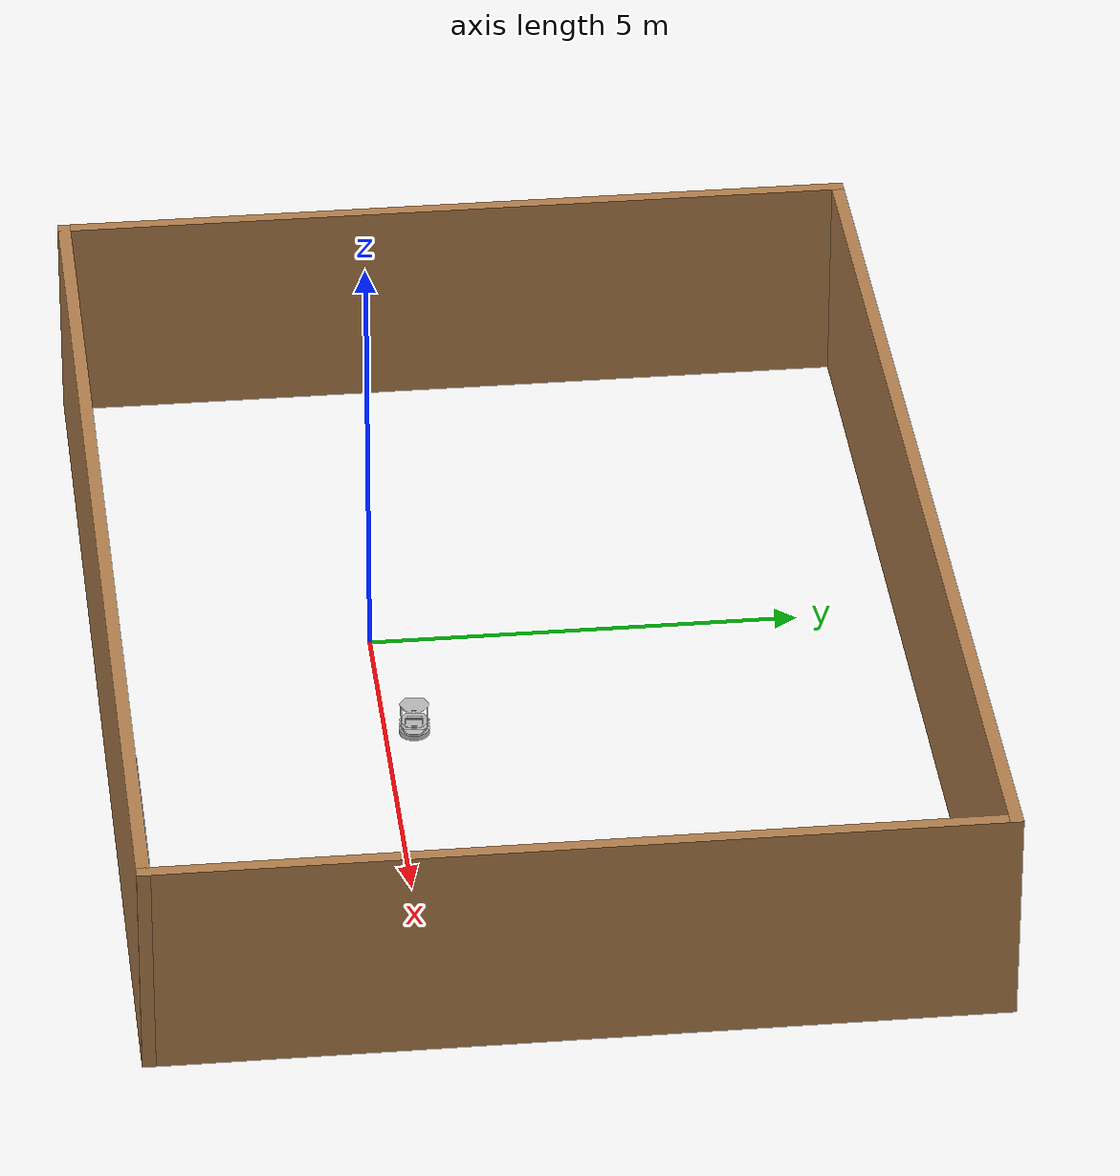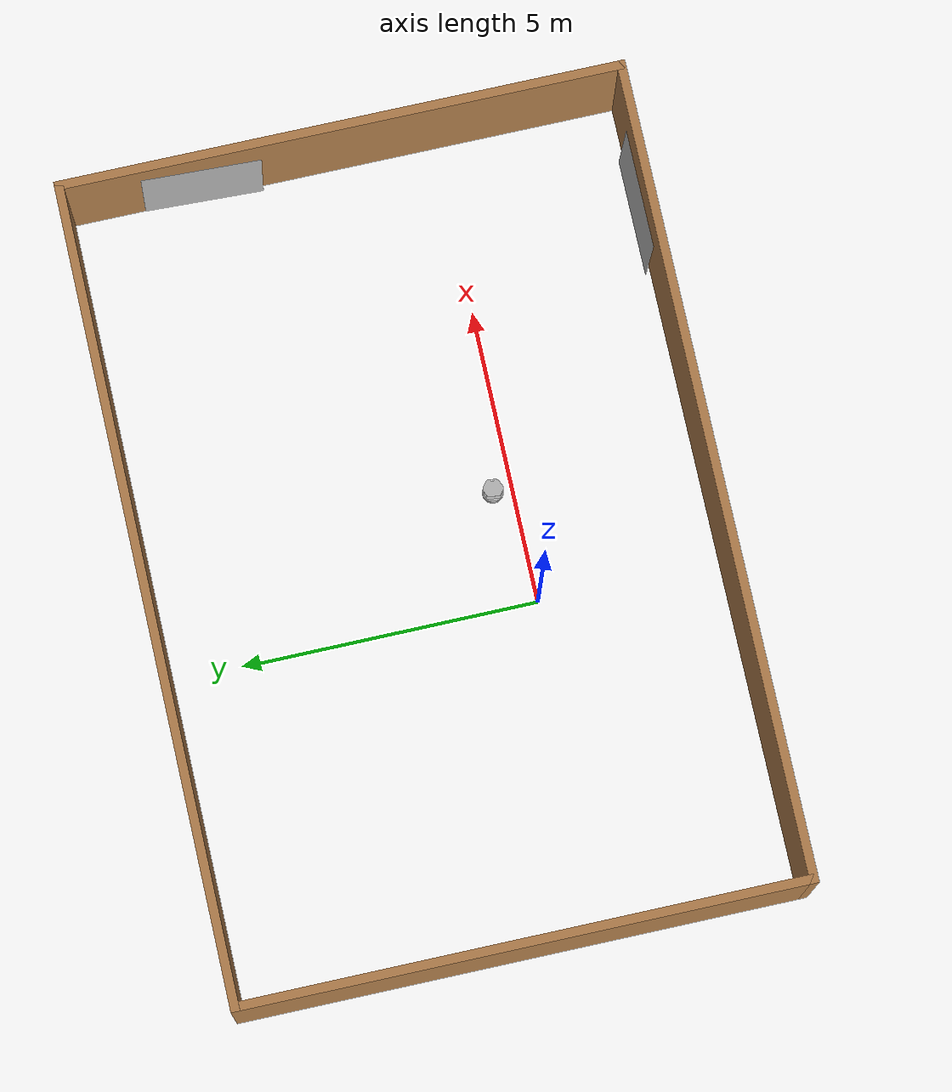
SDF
<sdf version="1.6">
 <world name="default">
  <model name="mobile_base">
   <link name="base_footprint">
    <inertial>
     <pose>-0.002635 -4.1e-05 0.129243 0 -0 0</pose>
     <mass>4.6973</mass>
     <inertia>
      <ixx>0.1365</ixx>
      <ixy>-2.51802e-05</ixy>
      <ixz>0.0108194</ixz>
      <iyy>0.132157</iyy>
      <iyz>4.89572e-05</iyz>
      <izz>0.0741648</izz>
     </inertia>
    </inertial>
    <collision name="base_footprint_fixed_joint_lump__base_collision">
     <pose>0 0 0.06969 0 -0 0</pose>
     <geometry><cylinder><length>0.10938</length><radius>0.178</radius></cylinder></geometry>
    </collision>
    <collision name="base_footprint_fixed_joint_lump__camera_link_collision_1">
     <pose>-0.087 -0.0015 0.2972 0 -0 0</pose>
     <geometry><box><size>0.073 0.276 0.072</size></box></geometry>
    </collision>
    <collision name="base_footprint_fixed_joint_lump__caster_back_link_collision_2">
     <pose>-0.135 0 0.0192 -1.5708 0 0</pose>
     <geometry><cylinder><length>0.0176</length><radius>0.017</radius></cylinder></geometry>
     <surface>
      <contact><ode><kp>1e+06</kp><kd>100</kd><max_vel>1</max_vel><min_depth>0.001</min_depth></ode></contact>
      <friction><ode><mu>0</mu><mu2>0</mu2></ode></friction>
     </surface>
    </collision>
    <collision name="base_footprint_fixed_joint_lump__caster_front_link_collision_3">
     <pose>0.115 0 0.0172 -1.5708 0 0</pose>
     <geometry><cylinder><length>0.0176</length><radius>0.017</radius></cylinder></geometry>
     <surface>
      <contact><ode><kp>1e+06</kp><kd>100</kd><max_vel>1</max_vel><min_depth>0.001</min_depth></ode></contact>
      <friction><ode><mu>0</mu><mu2>0</mu2></ode></friction>
     </surface>
    </collision>
    <collision name="base_footprint_fixed_joint_lump__mount_asus_xtion_pro_link_collision_4">
     <pose>-0.1024 0 0.2822 0 -0 0</pose>
     <geometry><box><size>0.033 0.276 0.012</size></box></geometry>
    </collision>
    <collision name="base_footprint_fixed_joint_lump__plate_bottom_link_collision_5">
     <pose>0 0 0.1408 0 -0 0</pose>
     <geometry><cylinder><length>0.006</length><radius>0.17</radius></cylinder></geometry>
    </collision>
    <collision name="base_footprint_fixed_joint_lump__plate_middle_link_collision_6">
     <pose>0 0 0.1976 0 -0 0</pose>
     <geometry><cylinder><length>0.006</length><radius>0.17</radius></cylinder></geometry>
    </collision>
    <collision name="base_footprint_fixed_joint_lump__plate_top_link_collision_7">
     <pose>0 0 0.4068 0 -0 0</pose>
     <geometry><cylinder><length>0.006</length><radius>0.17</radius></cylinder></geometry>
    </collision>
    <collision name="base_footprint_fixed_joint_lump__pole_bottom_0_link_collision_8">
     <pose>0.12 0.082 0.113 0 -0 0</pose>
     <geometry><cylinder><length>0.0492</length><radius>0.006</radius></cylinder></geometry>
    </collision>
    <collision name="base_footprint_fixed_joint_lump__pole_bottom_1_link_collision_9">
     <pose>0.055 0.12 0.113 0 -0 0</pose>
     <geometry><cylinder><length>0.0492</length><radius>0.006</radius></cylinder></geometry>
    </collision>
    <collision name="base_footprint_fixed_joint_lump__pole_bottom_2_link_collision_10">
     <pose>-0.055 0.12 0.113 0 -0 0</pose>
     <geometry><cylinder><length>0.0492</length><radius>0.006</radius></cylinder></geometry>
    </collision>
    <collision name="base_footprint_fixed_joint_lump__pole_bottom_3_link_collision_11">
     <pose>0.12 -0.082 0.113 0 -0 0</pose>
     <geometry><cylinder><length>0.0492</length><radius>0.006</radius></cylinder></geometry>
    </collision>
    <collision name="base_footprint_fixed_joint_lump__pole_bottom_4_link_collision_12">
     <pose>0.055 -0.12 0.113 0 -0 0</pose>
     <geometry><cylinder><length>0.0492</length><radius>0.006</radius></cylinder></geometry>
    </collision>
    <collision name="base_footprint_fixed_joint_lump__pole_bottom_5_link_collision_13">
     <pose>-0.055 -0.12 0.113 0 -0 0</pose>
     <geometry><cylinder><length>0.0492</length><radius>0.006</radius></cylinder></geometry>
    </collision>
    <collision name="base_footprint_fixed_joint_lump__pole_kinect_0_link_collision_14">
     <pose>-0.1024 0.098 0.2474 0 -0 0</pose>
     <geometry><cylinder><length>0.0936</length><radius>0.006</radius></cylinder></geometry>
    </collision>
    <collision name="base_footprint_fixed_joint_lump__pole_kinect_1_link_collision_15">
     <pose>-0.1024 -0.098 0.2474 0 -0 0</pose>
     <geometry><cylinder><length>0.0936</length><radius>0.006</radius></cylinder></geometry>
    </collision>
    <collision name="base_footprint_fixed_joint_lump__pole_middle_0_link_collision_16">
     <pose>0.0381 0.1505 0.1742 0 -0 0</pose>
     <geometry><cylinder><length>0.0608</length><radius>0.006</radius></cylinder></geometry>
    </collision>
    <collision name="base_footprint_fixed_joint_lump__pole_middle_1_link_collision_17">
     <pose>0.0381 -0.1505 0.1742 0 -0 0</pose>
     <geometry><cylinder><length>0.0608</length><radius>0.006</radius></cylinder></geometry>
    </collision>
    <collision name="base_footprint_fixed_joint_lump__pole_middle_2_link_collision_18">
     <pose>-0.0381 0.1505 0.1742 0 -0 0</pose>
     <geometry><cylinder><length>0.0608</length><radius>0.006</radius></cylinder></geometry>
    </collision>
    <collision name="base_footprint_fixed_joint_lump__pole_middle_3_link_collision_19">
     <pose>-0.0381 -0.1505 0.1742 0 -0 0</pose>
     <geometry><cylinder><length>0.0608</length><radius>0.006</radius></cylinder></geometry>
    </collision>
    <collision name="base_footprint_fixed_joint_lump__pole_top_0_link_collision_20">
     <pose>0.0381 0.1505 0.3022 0 -0 0</pose>
     <geometry><cylinder><length>0.2032</length><radius>0.006</radius></cylinder></geometry>
    </collision>
    <collision name="base_footprint_fixed_joint_lump__pole_top_1_link_collision_21">
     <pose>0.0381 -0.1505 0.3022 0 -0 0</pose>
     <geometry><cylinder><length>0.2032</length><radius>0.006</radius></cylinder></geometry>
    </collision>
    <collision name="base_footprint_fixed_joint_lump__pole_top_2_link_collision_22">
     <pose>-0.0381 0.1505 0.3022 0 -0 0</pose>
     <geometry><cylinder><length>0.2032</length><radius>0.006</radius></cylinder></geometry>
    </collision>
    <collision name="base_footprint_fixed_joint_lump__pole_top_3_link_collision_23">
     <pose>-0.0381 -0.1505 0.3022 0 -0 0</pose>
     <geometry><cylinder><length>0.2032</length><radius>0.006</radius></cylinder></geometry>
    </collision>
    <visual name="base_footprint_fixed_joint_lump__base_link_visual">
     <pose>0.001 0 0.06219 0 -0 0</pose>
     <geometry>
      <mesh><scale>1 1 1</scale><uri>/opt/ros/kinetic/share/kobuki_description/meshes/main_body.dae</uri></mesh>
     </geometry>
     <material><script><uri>__default__</uri><name>__default__</name></script></material>
    </visual>
    <visual name="base_footprint_fixed_joint_lump__camera_link_visual_1">
     <pose>-0.102 0.002 0.3012 0 -0 0</pose>
     <geometry>
      <mesh>
       <scale>1 1 1</scale>
       <uri>/opt/ros/kinetic/share/turtlebot_description/meshes/sensors/xtion_pro_camera.dae</uri>
      </mesh>
     </geometry>
     <material><script><uri>__default__</uri><name>__default__</name></script></material>
    </visual>
    <visual name="base_footprint_fixed_joint_lump__mount_asus_xtion_pro_link_visual_2">
     <pose>-0.1024 0 0.2822 -1.5708 0 0</pose>
     <geometry>
      <mesh>
       <scale>1 1 1</scale>
       <uri>/opt/ros/kinetic/share/turtlebot_description/meshes/sensors/xtion_pro_stack.dae</uri>
      </mesh>
     </geometry>
    </visual>
    <visual name="base_footprint_fixed_joint_lump__plate_bottom_link_visual_3">
     <pose>0.02364 0 0.1408 0 -0 0</pose>
     <geometry>
      <mesh>
       <scale>1 1 1</scale>
       <uri>/opt/ros/kinetic/share/turtlebot_description/meshes/stacks/hexagons/plate_bottom.dae</uri>
      </mesh>
     </geometry>
    </visual>
    <visual name="base_footprint_fixed_joint_lump__plate_middle_link_visual_4">
     <pose>-0.01364 0 0.1976 0 -0 0</pose>
     <geometry>
      <mesh>
       <scale>1 1 1</scale>
       <uri>/opt/ros/kinetic/share/turtlebot_description/meshes/stacks/hexagons/plate_middle.dae</uri>
      </mesh>
     </geometry>
    </visual>
    <visual name="base_footprint_fixed_joint_lump__plate_top_link_visual_5">
     <pose>-0.01364 0 0.4068 0 -0 0</pose>
     <geometry>
      <mesh>
       <scale>1 1 1</scale>
       <uri>/opt/ros/kinetic/share/turtlebot_description/meshes/stacks/hexagons/plate_top.dae</uri>
      </mesh>
     </geometry>
    </visual>
    <visual name="base_footprint_fixed_joint_lump__pole_bottom_0_link_visual_6">
     <pose>0.12 0.082 0.113 0 -0 0</pose>
     <geometry>
      <mesh>
       <scale>1 1 1</scale>
       <uri>/opt/ros/kinetic/share/turtlebot_description/meshes/stacks/hexagons/pole_bottom.dae</uri>
      </mesh>
     </geometry>
    </visual>
    <visual name="base_footprint_fixed_joint_lump__pole_bottom_1_link_visual_7">
     <pose>0.055 0.12 0.113 0 -0 0</pose>
     <geometry>
      <mesh>
       <scale>1 1 1</scale>
       <uri>/opt/ros/kinetic/share/turtlebot_description/meshes/stacks/hexagons/pole_bottom.dae</uri>
      </mesh>
     </geometry>
    </visual>
    <visual name="base_footprint_fixed_joint_lump__pole_bottom_2_link_visual_8">
     <pose>-0.055 0.12 0.113 0 -0 0</pose>
     <geometry>
      <mesh>
       <scale>1 1 1</scale>
       <uri>/opt/ros/kinetic/share/turtlebot_description/meshes/stacks/hexagons/pole_bottom.dae</uri>
      </mesh>
     </geometry>
    </visual>
    <visual name="base_footprint_fixed_joint_lump__pole_bottom_3_link_visual_9">
     <pose>0.12 -0.082 0.113 0 -0 0</pose>
     <geometry>
      <mesh>
       <scale>1 1 1</scale>
       <uri>/opt/ros/kinetic/share/turtlebot_description/meshes/stacks/hexagons/pole_bottom.dae</uri>
      </mesh>
     </geometry>
    </visual>
    <visual name="base_footprint_fixed_joint_lump__pole_bottom_4_link_visual_10">
     <pose>0.055 -0.12 0.113 0 -0 0</pose>
     <geometry>
      <mesh>
       <scale>1 1 1</scale>
       <uri>/opt/ros/kinetic/share/turtlebot_description/meshes/stacks/hexagons/pole_bottom.dae</uri>
      </mesh>
     </geometry>
    </visual>
    <visual name="base_footprint_fixed_joint_lump__pole_bottom_5_link_visual_11">
     <pose>-0.055 -0.12 0.113 0 -0 0</pose>
     <geometry>
      <mesh>
       <scale>1 1 1</scale>
       <uri>/opt/ros/kinetic/share/turtlebot_description/meshes/stacks/hexagons/pole_bottom.dae</uri>
      </mesh>
     </geometry>
    </visual>
    <visual name="base_footprint_fixed_joint_lump__pole_kinect_0_link_visual_12">
     <pose>-0.1024 0.098 0.2374 0 -0 0</pose>
     <geometry>
      <mesh>
       <scale>1 1 1</scale>
       <uri>/opt/ros/kinetic/share/turtlebot_description/meshes/sensors/sensor_pole.dae</uri>
      </mesh>
     </geometry>
    </visual>
    <visual name="base_footprint_fixed_joint_lump__pole_kinect_1_link_visual_13">
     <pose>-0.1024 -0.098 0.2374 0 -0 0</pose>
     <geometry>
      <mesh>
       <scale>1 1 1</scale>
       <uri>/opt/ros/kinetic/share/turtlebot_description/meshes/sensors/sensor_pole.dae</uri>
      </mesh>
     </geometry>
    </visual>
    <visual name="base_footprint_fixed_joint_lump__pole_middle_0_link_visual_14">
     <pose>0.0381 0.1505 0.1742 3.14159 -0 3.14159</pose>
     <geometry>
      <mesh>
       <scale>1 1 1</scale>
       <uri>/opt/ros/kinetic/share/turtlebot_description/meshes/stacks/hexagons/pole_middle.dae</uri>
      </mesh>
     </geometry>
    </visual>
    <visual name="base_footprint_fixed_joint_lump__pole_middle_1_link_visual_15">
     <pose>0.0381 -0.1505 0.1742 3.14159 -0 3.14159</pose>
     <geometry>
      <mesh>
       <scale>1 1 1</scale>
       <uri>/opt/ros/kinetic/share/turtlebot_description/meshes/stacks/hexagons/pole_middle.dae</uri>
      </mesh>
     </geometry>
    </visual>
    <visual name="base_footprint_fixed_joint_lump__pole_middle_2_link_visual_16">
     <pose>-0.0381 0.1505 0.1742 3.14159 -0 3.14159</pose>
     <geometry>
      <mesh>
       <scale>1 1 1</scale>
       <uri>/opt/ros/kinetic/share/turtlebot_description/meshes/stacks/hexagons/pole_middle.dae</uri>
      </mesh>
     </geometry>
    </visual>
    <visual name="base_footprint_fixed_joint_lump__pole_middle_3_link_visual_17">
     <pose>-0.0381 -0.1505 0.1742 3.14159 -0 3.14159</pose>
     <geometry>
      <mesh>
       <scale>1 1 1</scale>
       <uri>/opt/ros/kinetic/share/turtlebot_description/meshes/stacks/hexagons/pole_middle.dae</uri>
      </mesh>
     </geometry>
    </visual>
    <visual name="base_footprint_fixed_joint_lump__pole_top_0_link_visual_18">
     <pose>0.0381 0.1505 0.3022 0 -0 0</pose>
     <geometry>
      <mesh>
       <scale>1 1 1</scale>
       <uri>/opt/ros/kinetic/share/turtlebot_description/meshes/stacks/hexagons/pole_top.dae</uri>
      </mesh>
     </geometry>
    </visual>
    <visual name="base_footprint_fixed_joint_lump__pole_top_1_link_visual_19">
     <pose>0.0381 -0.1505 0.3022 0 -0 0</pose>
     <geometry>
      <mesh>
       <scale>1 1 1</scale>
       <uri>/opt/ros/kinetic/share/turtlebot_description/meshes/stacks/hexagons/pole_top.dae</uri>
      </mesh>
     </geometry>
    </visual>
    <visual name="base_footprint_fixed_joint_lump__pole_top_2_link_visual_20">
     <pose>-0.0381 0.1505 0.3022 0 -0 0</pose>
     <geometry>
      <mesh>
       <scale>1 1 1</scale>
       <uri>/opt/ros/kinetic/share/turtlebot_description/meshes/stacks/hexagons/pole_top.dae</uri>
      </mesh>
     </geometry>
    </visual>
    <visual name="base_footprint_fixed_joint_lump__pole_top_3_link_visual_21">
     <pose>-0.0381 -0.1505 0.3022 0 -0 0</pose>
     <geometry>
      <mesh>
       <scale>1 1 1</scale>
       <uri>/opt/ros/kinetic/share/turtlebot_description/meshes/stacks/hexagons/pole_top.dae</uri>
      </mesh>
     </geometry>
    </visual>
    <sensor name="bumpers" type="contact">
     <always_on>1</always_on>
     <update_rate>50</update_rate>
     <visualize>1</visualize>
     <contact>
      <collision>base_footprint_fixed_joint_lump__base_collision</collision>
      <topic>__default_topic__</topic>
     </contact>
     <pose>0 0 0.0102 0 -0 0</pose>
    </sensor>
    <sensor name="camera" type="depth">
     <always_on>1</always_on>
     <update_rate>20</update_rate>
     <camera name="__default__">
      <horizontal_fov>1.0472</horizontal_fov>
      <image><format>B8G8R8</format><width>640</width><height>480</height></image>
      <clip><near>0.05</near><far>8</far></clip>
     </camera>
     <plugin name="kinect_camera_controller" filename="libgazebo_ros_openni_kinect.so">
      <cameraName>camera</cameraName>
      <alwaysOn>true</alwaysOn>
      <updateRate>10</updateRate>
      <imageTopicName>rgb/image_raw</imageTopicName>
      <depthImageTopicName>depth/image_raw</depthImageTopicName>
      <pointCloudTopicName>depth/points</pointCloudTopicName>
      <cameraInfoTopicName>rgb/camera_info</cameraInfoTopicName>
      <depthImageCameraInfoTopicName>depth/camera_info</depthImageCameraInfoTopicName>
      <frameName>camera_depth_optical_frame</frameName>
      <baseline>0.1</baseline>
      <distortion_k1>0.0</distortion_k1>
      <distortion_k2>0.0</distortion_k2>
      <distortion_k3>0.0</distortion_k3>
      <distortion_t1>0.0</distortion_t1>
      <distortion_t2>0.0</distortion_t2>
      <pointCloudCutoff>0.4</pointCloudCutoff>
      <robotNamespace>/</robotNamespace>
     </plugin>
     <pose>-0.087 -0.0015 0.2972 0 -0 0</pose>
    </sensor>
    <sensor name="cliff_sensor_front" type="ray">
     <always_on>1</always_on>
     <update_rate>50</update_rate>
     <visualize>1</visualize>
     <ray>
      <scan>
       <horizontal>
        <samples>50</samples>
        <resolution>1</resolution>
        <min_angle>-0.0436</min_angle>
        <max_angle>0.0436</max_angle>
       </horizontal>
       <vertical><samples>1</samples><min_angle>0</min_angle><max_angle>0</max_angle></vertical>
      </scan>
      <range><min>0.01</min><max>0.15</max><resolution>1</resolution></range>
     </ray>
     <pose>0.156 0 0.0316 3.14159 1.57079 3.14159</pose>
    </sensor>
    <sensor name="cliff_sensor_left" type="ray">
     <always_on>1</always_on>
     <update_rate>50</update_rate>
     <visualize>1</visualize>
     <ray>
      <scan>
       <horizontal>
        <samples>50</samples>
        <resolution>1</resolution>
        <min_angle>-0.0436</min_angle>
        <max_angle>0.0436</max_angle>
       </horizontal>
       <vertical><samples>1</samples><min_angle>0</min_angle><max_angle>0</max_angle></vertical>
      </scan>
      <range><min>0.01</min><max>0.15</max><resolution>1</resolution></range>
     </ray>
     <pose>0.08734 0.13601 0.0316 3.14159 1.57079 3.14159</pose>
    </sensor>
    <sensor name="cliff_sensor_right" type="ray">
     <always_on>1</always_on>
     <update_rate>50</update_rate>
     <visualize>1</visualize>
     <ray>
      <scan>
       <horizontal>
        <samples>50</samples>
        <resolution>1</resolution>
        <min_angle>-0.0436</min_angle>
        <max_angle>0.0436</max_angle>
       </horizontal>
       <vertical><samples>1</samples><min_angle>0</min_angle><max_angle>0</max_angle></vertical>
      </scan>
      <range><min>0.01</min><max>0.15</max><resolution>1</resolution></range>
     </ray>
     <pose>0.085 -0.13601 0.0316 3.14159 1.57079 3.14159</pose>
    </sensor>
    <sensor name="imu" type="imu">
     <always_on>1</always_on>
     <update_rate>50</update_rate>
     <visualize>0</visualize>
     <imu>
      <angular_velocity>
       <x>
        <noise type="gaussian">
         <mean>0</mean>
         <stddev>1.96e-06</stddev>
         <bias_mean>0</bias_mean>
         <bias_stddev>0</bias_stddev>
        </noise>
       </x>
       <y>
        <noise type="gaussian">
         <mean>0</mean>
         <stddev>1.96e-06</stddev>
         <bias_mean>0</bias_mean>
         <bias_stddev>0</bias_stddev>
        </noise>
       </y>
       <z>
        <noise type="gaussian">
         <mean>0</mean>
         <stddev>1.96e-06</stddev>
         <bias_mean>0</bias_mean>
         <bias_stddev>0</bias_stddev>
        </noise>
       </z>
      </angular_velocity>
      <linear_acceleration>
       <x>
        <noise type="gaussian">
         <mean>0</mean>
         <stddev>0.017</stddev>
         <bias_mean>0.1</bias_mean>
         <bias_stddev>0.001</bias_stddev>
        </noise>
       </x>
       <y>
        <noise type="gaussian">
         <mean>0</mean>
         <stddev>0.017</stddev>
         <bias_mean>0.1</bias_mean>
         <bias_stddev>0.001</bias_stddev>
        </noise>
       </y>
       <z>
        <noise type="gaussian">
         <mean>0</mean>
         <stddev>0.017</stddev>
         <bias_mean>0.1</bias_mean>
         <bias_stddev>0.001</bias_stddev>
        </noise>
       </z>
      </linear_acceleration>
     </imu>
     <pose>0.056 0.062 0.0304 0 -0 0</pose>
    </sensor>
   </link>
   <link name="wheel_left_link">
    <pose>0 0.115 0.0352 -1.5708 0 0</pose>
    <inertial>
     <mass>0.01</mass>
     <inertia><ixx>0.001</ixx><ixy>0</ixy><ixz>0</ixz><iyy>0.001</iyy><iyz>0</iyz><izz>0.001</izz></inertia>
    </inertial>
    <collision name="wheel_left_link_collision">
     <geometry><cylinder><length>0.0206</length><radius>0.0352</radius></cylinder></geometry>
     <surface>
      <contact><ode><kp>1e+06</kp><kd>100</kd><max_vel>1</max_vel><min_depth>0.001</min_depth></ode></contact>
      <friction><ode><mu>1</mu><mu2>1</mu2></ode></friction>
     </surface>
    </collision>
    <visual name="wheel_left_link_visual">
     <geometry>
      <mesh><scale>1 1 1</scale><uri>/opt/ros/kinetic/share/kobuki_description/meshes/wheel.dae</uri></mesh>
     </geometry>
     <material><script><uri>__default__</uri><name>__default__</name></script></material>
    </visual>
   </link>
   <joint name="wheel_left_joint" type="revolute">
    <child>wheel_left_link</child>
    <parent>base_footprint</parent>
    <axis>
     <xyz>0 1 0</xyz>
     <limit><lower>-1e+16</lower><upper>1e+16</upper></limit>
     <dynamics><spring_reference>0</spring_reference><spring_stiffness>0</spring_stiffness></dynamics>
     <use_parent_model_frame>1</use_parent_model_frame>
    </axis>
   </joint>
   <link name="wheel_right_link">
    <pose>0 -0.115 0.0352 -1.5708 0 0</pose>
    <inertial>
     <mass>0.01</mass>
     <inertia><ixx>0.001</ixx><ixy>0</ixy><ixz>0</ixz><iyy>0.001</iyy><iyz>0</iyz><izz>0.001</izz></inertia>
    </inertial>
    <collision name="wheel_right_link_collision">
     <geometry><cylinder><length>0.0206</length><radius>0.035</radius></cylinder></geometry>
     <surface>
      <contact><ode><kp>1e+06</kp><kd>100</kd><max_vel>1</max_vel><min_depth>0.001</min_depth></ode></contact>
      <friction><ode><mu>1</mu><mu2>1</mu2></ode></friction>
     </surface>
    </collision>
    <visual name="wheel_right_link_visual">
     <geometry>
      <mesh><scale>1 1 1</scale><uri>/opt/ros/kinetic/share/kobuki_description/meshes/wheel.dae</uri></mesh>
     </geometry>
     <material><script><uri>__default__</uri><name>__default__</name></script></material>
    </visual>
   </link>
   <joint name="wheel_right_joint" type="revolute">
    <child>wheel_right_link</child>
    <parent>base_footprint</parent>
    <axis>
     <xyz>0 1 0</xyz>
     <limit><lower>-1e+16</lower><upper>1e+16</upper></limit>
     <dynamics><spring_reference>0</spring_reference><spring_stiffness>0</spring_stiffness></dynamics>
     <use_parent_model_frame>1</use_parent_model_frame>
    </axis>
   </joint>
   <static>0</static>
   <plugin name="kobuki_controller" filename="libgazebo_ros_kobuki.so">
    <publish_tf>1</publish_tf>
    <left_wheel_joint_name>wheel_left_joint</left_wheel_joint_name>
    <right_wheel_joint_name>wheel_right_joint</right_wheel_joint_name>
    <wheel_separation>.230</wheel_separation>
    <wheel_diameter>0.070</wheel_diameter>
    <torque>1.0</torque>
    <velocity_command_timeout>0.6</velocity_command_timeout>
    <cliff_sensor_left_name>cliff_sensor_left</cliff_sensor_left_name>
    <cliff_sensor_center_name>cliff_sensor_front</cliff_sensor_center_name>
    <cliff_sensor_right_name>cliff_sensor_right</cliff_sensor_right_name>
    <cliff_detection_threshold>0.04</cliff_detection_threshold>
    <bumper_name>bumpers</bumper_name>
    <imu_name>imu</imu_name>
    <robotNamespace>/</robotNamespace>
   </plugin>
   <pose>1.94594 0.331478 -0.001131 2.7e-05 -0.007997 3.03152</pose>
  </model>
  <model name="WoodVolta">
   <pose>1.16884 1.54534 0 0 -0 0</pose>
   <link name="Wall_11">
    <collision name="Wall_11_Collision">
     <geometry><box><size>9.5 0.15 2.5</size></box></geometry>
     <pose>0 0 1.25 0 -0 0</pose>
    </collision>
    <visual name="Wall_11_Visual">
     <pose>0 0 1.25 0 -0 0</pose>
     <geometry><box><size>9.5 0.15 2.5</size></box></geometry>
     <material>
      <script><uri>file://media/materials/scripts/gazebo.material</uri><name>Gazebo/Wood</name></script>
      <ambient>1 1 1 1</ambient>
     </material>
    </visual>
    <pose>-6.8 0 0 0 -0 1.5708</pose>
   </link>
   <link name="Wall_12">
    <collision name="Wall_12_Collision">
     <geometry><box><size>13.75 0.15 2.5</size></box></geometry>
     <pose>0 0 1.25 0 -0 0</pose>
    </collision>
    <visual name="Wall_12_Visual">
     <pose>0 0 1.25 0 -0 0</pose>
     <geometry><box><size>13.75 0.15 2.5</size></box></geometry>
     <material>
      <script><uri>file://media/materials/scripts/gazebo.material</uri><name>Gazebo/Wood</name></script>
      <ambient>1 1 1 1</ambient>
     </material>
    </visual>
    <pose>0 4.675 0 0 -0 0</pose>
   </link>
   <link name="Wall_13">
    <collision name="Wall_13_Collision">
     <geometry><box><size>9.5 0.15 2.5</size></box></geometry>
     <pose>0 0 1.25 0 -0 0</pose>
    </collision>
    <visual name="Wall_13_Visual">
     <pose>0 0 1.25 0 -0 0</pose>
     <geometry><box><size>9.5 0.15 2.5</size></box></geometry>
     <material>
      <script><uri>file://media/materials/scripts/gazebo.material</uri><name>Gazebo/Wood</name></script>
      <ambient>1 1 1 1</ambient>
     </material>
    </visual>
    <pose>6.8 0 0 0 0 -1.5708</pose>
   </link>
   <link name="Wall_8">
    <collision name="Wall_8_Collision">
     <geometry><box><size>13.75 0.15 2.5</size></box></geometry>
     <pose>0 0 1.25 0 -0 0</pose>
    </collision>
    <visual name="Wall_8_Visual">
     <pose>0 0 1.25 0 -0 0</pose>
     <geometry><box><size>13.75 0.15 2.5</size></box></geometry>
     <material>
      <script><uri>file://media/materials/scripts/gazebo.material</uri><name>Gazebo/Wood</name></script>
      <ambient>1 1 1 1</ambient>
     </material>
    </visual>
    <pose>0 -4.675 0 0 -0 0</pose>
   </link>
   <static>1</static>
  </model>
  <model name="checkerboard_plane_0">
   <static>1</static>
   <link name="link">
    <visual name="visual">
     <geometry>
      <mesh><uri>model://checkerboard_plane/meshes/checkerboard_plane.dae</uri><scale>1 1 1</scale></mesh>
     </geometry>
    </visual>
   </link>
   <pose>6 -2.98871 1 -1.55 0 0</pose>
  </model>
  <model name="checkerboard_plane_0_clone_clone_clone">
   <static>1</static>
   <link name="link">
    <visual name="visual">
     <geometry>
      <mesh><uri>model://checkerboard_plane/meshes/checkerboard_plane.dae</uri><scale>1 1 1</scale></mesh>
     </geometry>
    </visual>
   </link>
   <pose>7.84966 3.93109 0.999539 -1.57008 -0.020784 1.53641</pose>
  </model>
 </world>
</sdf>
